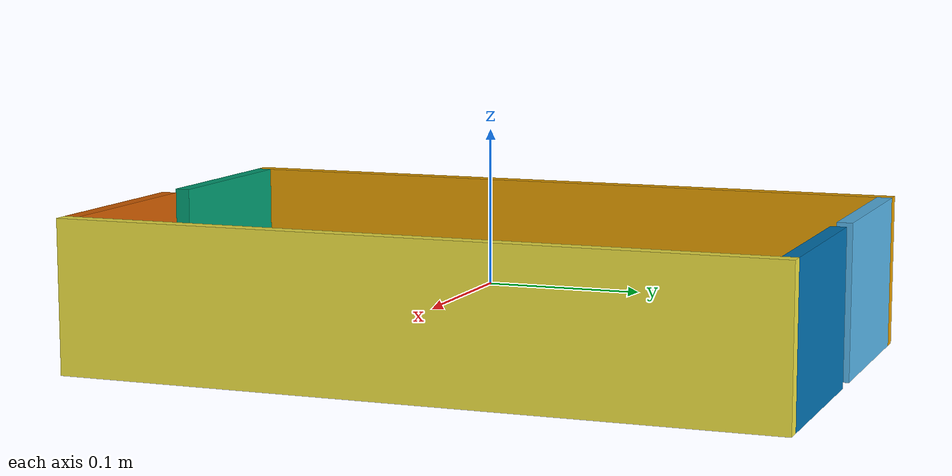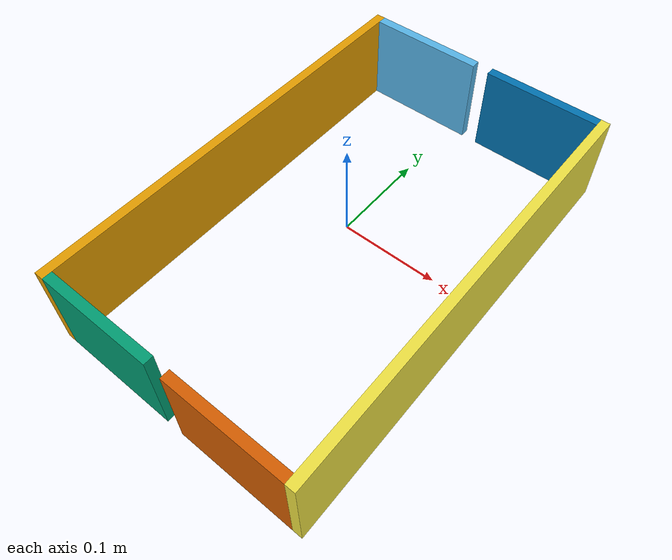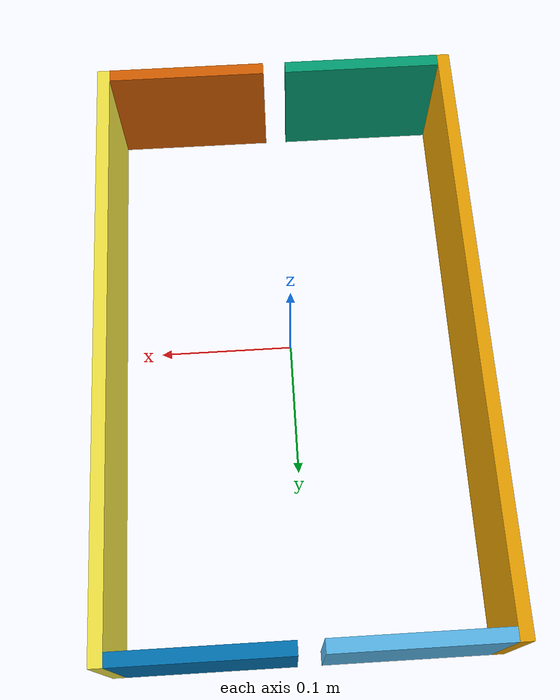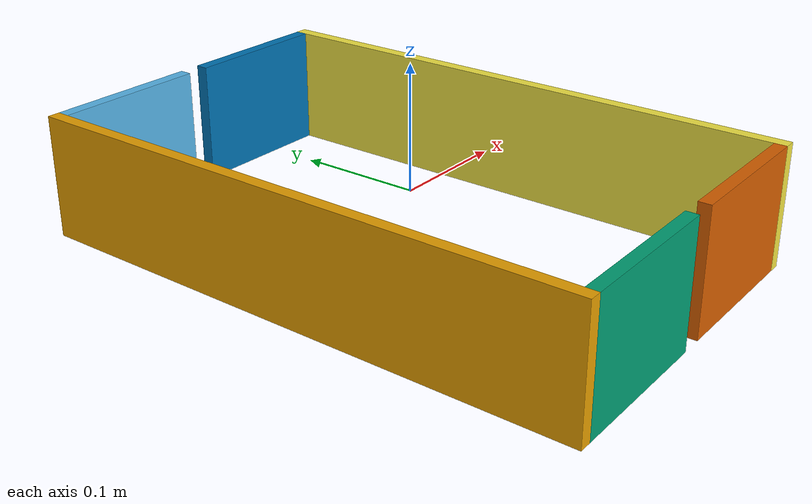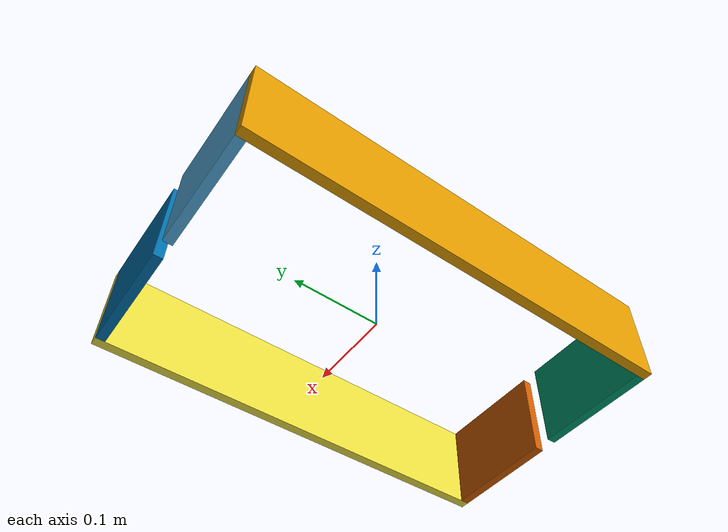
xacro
<?xml version="1.0"?>
<robot name="gripper"
       xmlns:xacro="http://ros.org/wiki/xacro">

  <!-- Switch between EffortJointInterface and PositionJointInterface, still requires change in yaml files -->
  <xacro:property name="using_position_not_effort" value="true" />

  <!-- Constants for gripper joint controllers -->
  <xacro:property name="effort_limit" value="200" />
  <xacro:property name="gripper_friction" value="100" />
  <xacro:property name="gripper_min_depth" value="0.001" />

  <!-- Constants for robot dimensions -->
  <xacro:property name="cone_radius" value=".14" />

  <xacro:property name="gripper_thickness" value="0.01" />
  <xacro:property name="gripper_height" value="0.1" />
  <xacro:property name="gripper_wide_block_width" value="${3.2 * cone_radius + 2.0 * gripper_thickness}" />
  <xacro:property name="gripper_side_block_width" value="${0.9 * cone_radius}" />

  <xacro:property name="gripper_material_density" value="2700" />
  <xacro:property name="gripper_wide_block_mass" value="${gripper_material_density * gripper_wide_block_width * gripper_thickness * gripper_height}" />
  <xacro:property name="gripper_side_block_mass" value="${gripper_material_density * gripper_side_block_width * gripper_thickness * gripper_height}" />

  <!-- Macro for cuboid mass moment of inertia -->
  <xacro:macro name="cuboid_moment_of_inertia" params="m d1 d2 d3">
    <inertia ixx="${m * (d2 * d2 + d3 * d3) / 12}" ixy="0.0" ixz="0.0"
	     iyy="${m * (d1 * d1 + d3 * d3) / 12}" iyz="0.0"
	     izz="${m * (d1 * d1 + d2 * d2) / 12}" />
  </xacro:macro>

  <!-- Macro for gripper wide block -->
  <xacro:macro name="gripper_wide_block" params="suffix">
    <link name="gripper_wide_block_${suffix}">
      <visual>
	<geometry>
	  <box size="${gripper_thickness} ${gripper_wide_block_width} ${gripper_height}" />
	</geometry>
      </visual>

      <collision>
	<geometry>
	  <box size="${gripper_thickness} ${gripper_wide_block_width} ${gripper_height}" />
	</geometry>
      </collision>

      <inertial>
	<mass value="${gripper_wide_block_mass}" />
	<xacro:cuboid_moment_of_inertia m="${gripper_wide_block_mass}" d1="${gripper_thickness}" d2="${gripper_wide_block_width}" d3="${gripper_height}" />
      </inertial>
    </link>
  </xacro:macro>

  <!-- Macro for gripper side block -->
  <xacro:macro name="gripper_side_block" params="suffix">
  <link name="gripper_side_block_${suffix}">
    <visual>
      <geometry>
	<box size="${gripper_side_block_width} ${gripper_thickness} ${gripper_height}" />
      </geometry>
    </visual>

    <collision name="collision">
      <geometry>
	<box size="${gripper_side_block_width} ${gripper_thickness} ${gripper_height}" />
      </geometry>
    </collision>

    <inertial>
      <mass value="${gripper_side_block_mass}" />
      <xacro:cuboid_moment_of_inertia m="${gripper_side_block_mass}" d1="${gripper_side_block_width}" d2="${gripper_thickness}" d3="${gripper_height}" />
    </inertial>
  </link>
  </xacro:macro>

  <!-- Macro for fixed joints -->
  <xacro:macro name="block_fixed_joints" params="suffix x y parent_suffix child_suffix">
    <joint name="block_fixed_joint_${suffix}" type="fixed">
      <origin xyz="${x} ${y} 0" rpy="0 0 0" />
      <parent link="gripper_wide_block_${parent_suffix}" />
      <child link="gripper_side_block_${child_suffix}" />
    </joint>
  </xacro:macro>

  <!-- Cuboids constituting gripper -->
  <xacro:gripper_wide_block suffix="p" />
  <xacro:gripper_side_block suffix="p1" />
  <xacro:gripper_side_block suffix="p2" />
  <xacro:gripper_wide_block suffix="d" />
  <xacro:gripper_side_block suffix="d1" />
  <xacro:gripper_side_block suffix="d2" />

  <!-- Fixed joints for gripper halves -->
  <xacro:block_fixed_joints suffix="p1" x="${(gripper_side_block_width + gripper_thickness) / 2}" y="${(gripper_wide_block_width - gripper_thickness) / 2}"
			    parent_suffix="p" child_suffix="p1" />
  <xacro:block_fixed_joints suffix="p2" x="${(gripper_side_block_width + gripper_thickness) / 2}" y="${-(gripper_wide_block_width - gripper_thickness) / 2}"
			    parent_suffix="p" child_suffix="p2" />
  <xacro:block_fixed_joints suffix="d1" x="${-(gripper_side_block_width + gripper_thickness) / 2}" y="${(gripper_wide_block_width - gripper_thickness) / 2}"
			    parent_suffix="d" child_suffix="d1" />
  <xacro:block_fixed_joints suffix="d2" x="${-(gripper_side_block_width + gripper_thickness) / 2}" y="${-(gripper_wide_block_width - gripper_thickness) / 2}"
			    parent_suffix="d" child_suffix="d2" />

  <!-- Phantom link for center of gripper -->
  <link name="gripper_center" >
    <inertial>
      <mass value="0.01"/>
      <inertia ixx="0.0001" ixy="0.0" ixz="0.0" iyy="0.0001" iyz="0.0" izz="0.0001"/>
    </inertial>
  </link>
    <!--origin xyz="${gripper_wide_block_width + gripper_thickness / 2} 0 0" rpy="0 0 0"/-->
    <!--origin xyz="${cone_radius + gripper_thickness / 2} 0 0" rpy="0 0 0"/-->

  <!-- Prismatic joint -->
  <joint name="gripper_joint_p" type="prismatic">
    <origin xyz="-0.14 0 0" rpy="0 0 0" />
    <parent link="gripper_center" />
    <child link="gripper_wide_block_p" />
    <limit effort="${effort_limit}" lower="-100" upper="100" velocity="0.5"/>
  </joint>

  <joint name="gripper_joint_d" type="prismatic">
    <origin xyz="0.14 0 0" rpy="0 0 0" />
    <parent link="gripper_center" />
    <child link="gripper_wide_block_d" />
    <limit effort="${effort_limit}" lower="-100" upper="100" velocity="0.5"/>
  </joint>

  <!-- Transmission for ROS control -->
  <xacro:if value="${using_position_not_effort == 'true'}">
    <transmission name="gripper_joint_transmission_p">
      <type>transmission_interface/SimpleTransmission</type>
      <joint name="gripper_joint_p">
	<hardwareInterface>hardware_interface/PositionJointInterface</hardwareInterface>
      </joint>
      <actuator name="gripper_joint_motor_p">
	<hardwareInterface>hardware_interface/PositionJointInterface</hardwareInterface>
	<mechanicalReduction>1</mechanicalReduction>
      </actuator>
    </transmission>

    <transmission name="gripper_joint_transmission_d">
      <type>transmission_interface/SimpleTransmission</type>
      <joint name="gripper_joint_d">
	<hardwareInterface>hardware_interface/PositionJointInterface</hardwareInterface>
      </joint>
      <actuator name="gripper_joint_motor_d">
	<hardwareInterface>hardware_interface/PositionJointInterface</hardwareInterface>
	<mechanicalReduction>1</mechanicalReduction>
      </actuator>
    </transmission>
  </xacro:if>

  <xacro:if value="${using_position_not_effort == 'false'}">
    <transmission name="gripper_joint_transmission_p">
      <type>transmission_interface/SimpleTransmission</type>
      <joint name="gripper_joint_p">
	<hardwareInterface>hardware_interface/EffortJointInterface</hardwareInterface>
      </joint>
      <actuator name="gripper_joint_motor_p">
	<hardwareInterface>hardware_interface/EffortJointInterface</hardwareInterface>
	<mechanicalReduction>1</mechanicalReduction>
      </actuator>
    </transmission>

    <transmission name="gripper_joint_transmission_d">
      <type>transmission_interface/SimpleTransmission</type>
      <joint name="gripper_joint_d">
	<hardwareInterface>hardware_interface/EffortJointInterface</hardwareInterface>
      </joint>
      <actuator name="gripper_joint_motor_d">
	<hardwareInterface>hardware_interface/EffortJointInterface</hardwareInterface>
	<mechanicalReduction>1</mechanicalReduction>
      </actuator>
    </transmission>
  </xacro:if>

  <!-- Enable joint feedback -->
  <gazebo reference="gripper_joint_p">
    <provideFeedback>true</provideFeedback>
  </gazebo>

  <gazebo reference="gripper_joint_d">
    <provideFeedback>true</provideFeedback>
  </gazebo>

  <!-- ft_sensor plugins -->
  <gazebo>
    <plugin name="ft_sensor_p" filename="libgazebo_ros_ft_sensor.so">
      <updateRate>100.0</updateRate>
      <topicName>ft_sensor_topic_p</topicName>
      <jointName>gripper_joint_p</jointName>
    </plugin>
  </gazebo>

  <gazebo>
    <plugin name="ft_sensor_d" filename="libgazebo_ros_ft_sensor.so">
      <updateRate>100.0</updateRate>
      <topicName>ft_sensor_topic_d</topicName>
      <jointName>gripper_joint_d</jointName>
    </plugin>
  </gazebo>

  <!-- High friction on gripper -->
  <gazebo reference="gripper_wide_block_p">
    <mu1>${gripper_friction}</mu1>
    <mu2>${gripper_friction}</mu2>
    <minDepth>${gripper_min_depth}</minDepth>
    <maxVel>0</maxVel>
  </gazebo>

  <gazebo reference="gripper_wide_block_d">
    <mu1>${gripper_friction}</mu1>
    <mu2>${gripper_friction}</mu2>
    <minDepth>${gripper_min_depth}</minDepth>
    <maxVel>0</maxVel>
  </gazebo>

</robot>
